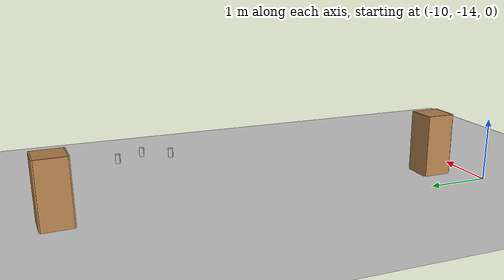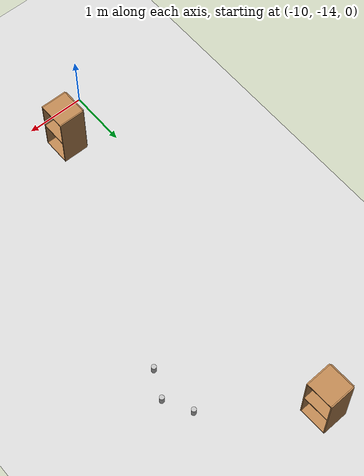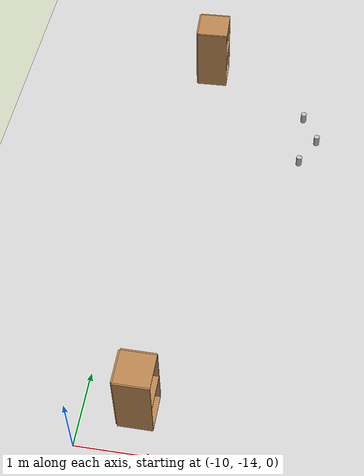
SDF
<sdf version="1.6">
 <world name="default">
  <model name="ground_plane">
   <static>1</static>
   <link name="link">
    <collision name="collision">
     <geometry><plane><normal>0 0 1</normal><size>100 100</size></plane></geometry>
     <surface><friction><ode><mu>100</mu><mu2>50</mu2></ode></friction></surface>
    </collision>
    <visual name="visual">
     <cast_shadows>0</cast_shadows>
     <geometry><plane><normal>0 0 1</normal><size>100 100</size></plane></geometry>
     <material>
      <script><uri>file://media/materials/scripts/gazebo.material</uri><name>Gazebo/Grey</name></script>
     </material>
    </visual>
    <velocity_decay><linear>0</linear><angular>0</angular></velocity_decay>
   </link>
  </model>
  <model name="cabinet_1">
   <static>0</static>
   <link name="cabinet_bottom_plate">
    <inertial>
     <pose>0 0 -1 0 -0 0</pose>
     <inertia><ixx>2.05</ixx><ixy>0</ixy><ixz>0</ixz><iyy>2.05</iyy><iyz>0</iyz><izz>2.05</izz></inertia>
     <mass>25</mass>
    </inertial>
    <collision name="cabinet_bottom_plate_geom">
     <pose>0 0 0.01 0 -0 0</pose>
     <geometry><box><size>0.45 0.45 0.02</size></box></geometry>
    </collision>
    <visual name="cabinet_bottom_plate_geom_visual">
     <pose>0 0 0.01 0 -0 0</pose>
     <geometry><box><size>0.45 0.45 0.02</size></box></geometry>
     <material>
      <script><uri>file://media/materials/scripts/gazebo.material</uri><name>Gazebo/Wood</name></script>
     </material>
    </visual>
    <collision name="cabinet_bottom_plate_geom_cabinet_back_plate">
     <pose>0.235 0 0.51 0 -0 0</pose>
     <geometry><box><size>0.02 0.45 1.02</size></box></geometry>
    </collision>
    <visual name="cabinet_bottom_plate_geom_cabinet_back_plate_visual">
     <pose>0.235 0 0.51 0 -0 0</pose>
     <geometry><box><size>0.02 0.45 1.02</size></box></geometry>
     <material>
      <script><uri>file://media/materials/scripts/gazebo.material</uri><name>Gazebo/Wood</name></script>
     </material>
    </visual>
    <collision name="cabinet_bottom_plate_geom_cabinet_left_plate">
     <pose>0 0.235 0.51 0 -0 0</pose>
     <geometry><box><size>0.45 0.02 1.02</size></box></geometry>
    </collision>
    <visual name="cabinet_bottom_plate_geom_cabinet_left_plate_visual">
     <pose>0 0.235 0.51 0 -0 0</pose>
     <geometry><box><size>0.45 0.02 1.02</size></box></geometry>
     <material>
      <script><uri>file://media/materials/scripts/gazebo.material</uri><name>Gazebo/Wood</name></script>
     </material>
    </visual>
    <collision name="cabinet_bottom_plate_geom_cabinet_middle_plate">
     <pose>0 0 0.51 0 -0 0</pose>
     <geometry><box><size>0.45 0.45 0.02</size></box></geometry>
    </collision>
    <visual name="cabinet_bottom_plate_geom_cabinet_middle_plate_visual">
     <pose>0 0 0.51 0 -0 0</pose>
     <geometry><box><size>0.45 0.45 0.02</size></box></geometry>
     <material>
      <script><uri>file://media/materials/scripts/gazebo.material</uri><name>Gazebo/Wood</name></script>
     </material>
    </visual>
    <collision name="cabinet_bottom_plate_geom_cabinet_right_plate">
     <pose>0 -0.235 0.51 0 -0 0</pose>
     <geometry><box><size>0.45 0.02 1.02</size></box></geometry>
    </collision>
    <visual name="cabinet_bottom_plate_geom_cabinet_right_plate_visual">
     <pose>0 -0.235 0.51 0 -0 0</pose>
     <geometry><box><size>0.45 0.02 1.02</size></box></geometry>
     <material>
      <script><uri>file://media/materials/scripts/gazebo.material</uri><name>Gazebo/Wood</name></script>
     </material>
    </visual>
    <collision name="cabinet_bottom_plate_geom_cabinet_top_plate">
     <pose>0 0 1.01 0 -0 0</pose>
     <geometry><box><size>0.45 0.45 0.02</size></box></geometry>
    </collision>
    <visual name="cabinet_bottom_plate_geom_cabinet_top_plate_visual">
     <pose>0 0 1.01 0 -0 0</pose>
     <geometry><box><size>0.45 0.45 0.02</size></box></geometry>
     <material>
      <script><uri>file://media/materials/scripts/gazebo.material</uri><name>Gazebo/Wood</name></script>
     </material>
    </visual>
    <velocity_decay><linear>0</linear><angular>0</angular></velocity_decay>
   </link>
   <pose>-9.33548 -7.30014 0 1e-06 -0 -3.09911</pose>
  </model>
  <model name="cabinet_4">
   <static>0</static>
   <link name="cabinet_bottom_plate">
    <inertial>
     <pose>0 0 -1 0 -0 0</pose>
     <inertia><ixx>2.05</ixx><ixy>0</ixy><ixz>0</ixz><iyy>2.05</iyy><iyz>0</iyz><izz>2.05</izz></inertia>
     <mass>25</mass>
    </inertial>
    <collision name="cabinet_bottom_plate_geom">
     <pose>0 0 0.01 0 -0 0</pose>
     <geometry><box><size>0.45 0.45 0.02</size></box></geometry>
    </collision>
    <visual name="cabinet_bottom_plate_geom_visual">
     <pose>0 0 0.01 0 -0 0</pose>
     <geometry><box><size>0.45 0.45 0.02</size></box></geometry>
     <material>
      <script><uri>file://media/materials/scripts/gazebo.material</uri><name>Gazebo/Wood</name></script>
     </material>
    </visual>
    <collision name="cabinet_bottom_plate_geom_cabinet_back_plate">
     <pose>0.235 0 0.51 0 -0 0</pose>
     <geometry><box><size>0.02 0.45 1.02</size></box></geometry>
    </collision>
    <visual name="cabinet_bottom_plate_geom_cabinet_back_plate_visual">
     <pose>0.235 0 0.51 0 -0 0</pose>
     <geometry><box><size>0.02 0.45 1.02</size></box></geometry>
     <material>
      <script><uri>file://media/materials/scripts/gazebo.material</uri><name>Gazebo/Wood</name></script>
     </material>
    </visual>
    <collision name="cabinet_bottom_plate_geom_cabinet_left_plate">
     <pose>0 0.235 0.51 0 -0 0</pose>
     <geometry><box><size>0.45 0.02 1.02</size></box></geometry>
    </collision>
    <visual name="cabinet_bottom_plate_geom_cabinet_left_plate_visual">
     <pose>0 0.235 0.51 0 -0 0</pose>
     <geometry><box><size>0.45 0.02 1.02</size></box></geometry>
     <material>
      <script><uri>file://media/materials/scripts/gazebo.material</uri><name>Gazebo/Wood</name></script>
     </material>
    </visual>
    <collision name="cabinet_bottom_plate_geom_cabinet_middle_plate">
     <pose>0 0 0.51 0 -0 0</pose>
     <geometry><box><size>0.45 0.45 0.02</size></box></geometry>
    </collision>
    <visual name="cabinet_bottom_plate_geom_cabinet_middle_plate_visual">
     <pose>0 0 0.51 0 -0 0</pose>
     <geometry><box><size>0.45 0.45 0.02</size></box></geometry>
     <material>
      <script><uri>file://media/materials/scripts/gazebo.material</uri><name>Gazebo/Wood</name></script>
     </material>
    </visual>
    <collision name="cabinet_bottom_plate_geom_cabinet_right_plate">
     <pose>0 -0.235 0.51 0 -0 0</pose>
     <geometry><box><size>0.45 0.02 1.02</size></box></geometry>
    </collision>
    <visual name="cabinet_bottom_plate_geom_cabinet_right_plate_visual">
     <pose>0 -0.235 0.51 0 -0 0</pose>
     <geometry><box><size>0.45 0.02 1.02</size></box></geometry>
     <material>
      <script><uri>file://media/materials/scripts/gazebo.material</uri><name>Gazebo/Wood</name></script>
     </material>
    </visual>
    <collision name="cabinet_bottom_plate_geom_cabinet_top_plate">
     <pose>0 0 1.01 0 -0 0</pose>
     <geometry><box><size>0.45 0.45 0.02</size></box></geometry>
    </collision>
    <visual name="cabinet_bottom_plate_geom_cabinet_top_plate_visual">
     <pose>0 0 1.01 0 -0 0</pose>
     <geometry><box><size>0.45 0.45 0.02</size></box></geometry>
     <material>
      <script><uri>file://media/materials/scripts/gazebo.material</uri><name>Gazebo/Wood</name></script>
     </material>
    </visual>
    <velocity_decay><linear>0</linear><angular>0</angular></velocity_decay>
   </link>
   <pose>-9.29938 -13.4113 0 0 1e-06 -3.14156</pose>
  </model>
  <model name="cocacola">
   <static>0</static>
   <link name="link">
    <inertial>
     <mass>0.25</mass>
     <inertia><ixx>0</ixx><ixy>0</ixy><ixz>0</ixz><iyy>0</iyy><iyz>0</iyz><izz>0</izz></inertia>
    </inertial>
    <collision name="collision">
     <pose>0 0 0.075 -3.14159 -0 0</pose>
     <geometry><cylinder><radius>0.04</radius><length>0.15</length></cylinder></geometry>
    </collision>
    <visual name="visual">
     <pose>0 0 0.075 -3.14159 -0 0</pose>
     <geometry><cylinder><radius>0.04</radius><length>0.15</length></cylinder></geometry>
     <material>
      <script>
       <uri>model://cocacola/material/scripts</uri>
       <uri>model://cocacola/material/textures</uri>
       <name>Custom/cocacola</name>
      </script>
     </material>
    </visual>
    <velocity_decay><linear>0</linear><angular>0</angular></velocity_decay>
   </link>
   <pose>-7.77263 -9.29055 0.300008 6.4e-05 -0.000189 -4e-06</pose>
  </model>
  <model name="cocacola_0">
   <static>0</static>
   <link name="link">
    <inertial>
     <mass>0.25</mass>
     <inertia><ixx>0</ixx><ixy>0</ixy><ixz>0</ixz><iyy>0</iyy><iyz>0</iyz><izz>0</izz></inertia>
    </inertial>
    <collision name="collision">
     <pose>0 0 0.075 -3.14159 -0 0</pose>
     <geometry><cylinder><radius>0.04</radius><length>0.15</length></cylinder></geometry>
    </collision>
    <visual name="visual">
     <pose>0 0 0.075 -3.14159 -0 0</pose>
     <geometry><cylinder><radius>0.04</radius><length>0.15</length></cylinder></geometry>
     <material>
      <script>
       <uri>model://cocacola/material/scripts</uri>
       <uri>model://cocacola/material/textures</uri>
       <name>Custom/cocacola</name>
      </script>
     </material>
    </visual>
    <velocity_decay><linear>0</linear><angular>0</angular></velocity_decay>
   </link>
   <pose>-7.79476 -8.41563 0.299998 0.000184 -7.5e-05 -2e-06</pose>
  </model>
  <model name="cocacola_1">
   <static>0</static>
   <link name="link">
    <inertial>
     <mass>0.25</mass>
     <inertia><ixx>0</ixx><ixy>0</ixy><ixz>0</ixz><iyy>0</iyy><iyz>0</iyz><izz>0</izz></inertia>
    </inertial>
    <collision name="collision">
     <pose>0 0 0.075 -3.14159 -0 0</pose>
     <geometry><cylinder><radius>0.04</radius><length>0.15</length></cylinder></geometry>
    </collision>
    <visual name="visual">
     <pose>0 0 0.075 -3.14159 -0 0</pose>
     <geometry><cylinder><radius>0.04</radius><length>0.15</length></cylinder></geometry>
     <material>
      <script>
       <uri>model://cocacola/material/scripts</uri>
       <uri>model://cocacola/material/textures</uri>
       <name>Custom/cocacola</name>
      </script>
     </material>
    </visual>
    <velocity_decay><linear>0</linear><angular>0</angular></velocity_decay>
   </link>
   <pose>-7.55915 -8.84989 0.300008 0.000166 -0.000129 1.9e-05</pose>
  </model>
  <model name="cabinet_1">
   <static>0</static>
   <link name="cabinet_bottom_plate">
    <inertial>
     <pose>0 0 -1 0 -0 0</pose>
     <inertia><ixx>2.05</ixx><ixy>0</ixy><ixz>0</ixz><iyy>2.05</iyy><iyz>0</iyz><izz>2.05</izz></inertia>
     <mass>25</mass>
    </inertial>
    <collision name="cabinet_bottom_plate_geom">
     <pose>0 0 0.01 0 -0 0</pose>
     <geometry><box><size>0.45 0.45 0.02</size></box></geometry>
    </collision>
    <visual name="cabinet_bottom_plate_geom_visual">
     <pose>0 0 0.01 0 -0 0</pose>
     <geometry><box><size>0.45 0.45 0.02</size></box></geometry>
     <material>
      <script><uri>file://media/materials/scripts/gazebo.material</uri><name>Gazebo/Wood</name></script>
     </material>
    </visual>
    <collision name="cabinet_bottom_plate_geom_cabinet_back_plate">
     <pose>0.235 0 0.51 0 -0 0</pose>
     <geometry><box><size>0.02 0.45 1.02</size></box></geometry>
    </collision>
    <visual name="cabinet_bottom_plate_geom_cabinet_back_plate_visual">
     <pose>0.235 0 0.51 0 -0 0</pose>
     <geometry><box><size>0.02 0.45 1.02</size></box></geometry>
     <material>
      <script><uri>file://media/materials/scripts/gazebo.material</uri><name>Gazebo/Wood</name></script>
     </material>
    </visual>
    <collision name="cabinet_bottom_plate_geom_cabinet_left_plate">
     <pose>0 0.235 0.51 0 -0 0</pose>
     <geometry><box><size>0.45 0.02 1.02</size></box></geometry>
    </collision>
    <visual name="cabinet_bottom_plate_geom_cabinet_left_plate_visual">
     <pose>0 0.235 0.51 0 -0 0</pose>
     <geometry><box><size>0.45 0.02 1.02</size></box></geometry>
     <material>
      <script><uri>file://media/materials/scripts/gazebo.material</uri><name>Gazebo/Wood</name></script>
     </material>
    </visual>
    <collision name="cabinet_bottom_plate_geom_cabinet_middle_plate">
     <pose>0 0 0.51 0 -0 0</pose>
     <geometry><box><size>0.45 0.45 0.02</size></box></geometry>
    </collision>
    <visual name="cabinet_bottom_plate_geom_cabinet_middle_plate_visual">
     <pose>0 0 0.51 0 -0 0</pose>
     <geometry><box><size>0.45 0.45 0.02</size></box></geometry>
     <material>
      <script><uri>file://media/materials/scripts/gazebo.material</uri><name>Gazebo/Wood</name></script>
     </material>
    </visual>
    <collision name="cabinet_bottom_plate_geom_cabinet_right_plate">
     <pose>0 -0.235 0.51 0 -0 0</pose>
     <geometry><box><size>0.45 0.02 1.02</size></box></geometry>
    </collision>
    <visual name="cabinet_bottom_plate_geom_cabinet_right_plate_visual">
     <pose>0 -0.235 0.51 0 -0 0</pose>
     <geometry><box><size>0.45 0.02 1.02</size></box></geometry>
     <material>
      <script><uri>file://media/materials/scripts/gazebo.material</uri><name>Gazebo/Wood</name></script>
     </material>
    </visual>
    <collision name="cabinet_bottom_plate_geom_cabinet_top_plate">
     <pose>0 0 1.01 0 -0 0</pose>
     <geometry><box><size>0.45 0.45 0.02</size></box></geometry>
    </collision>
    <visual name="cabinet_bottom_plate_geom_cabinet_top_plate_visual">
     <pose>0 0 1.01 0 -0 0</pose>
     <geometry><box><size>0.45 0.45 0.02</size></box></geometry>
     <material>
      <script><uri>file://media/materials/scripts/gazebo.material</uri><name>Gazebo/Wood</name></script>
     </material>
    </visual>
    <velocity_decay><linear>0</linear><angular>0</angular></velocity_decay>
   </link>
   <pose>-9.33548 -7.30014 0 1e-06 -0 -3.09911</pose>
  </model>
 </world>
</sdf>
